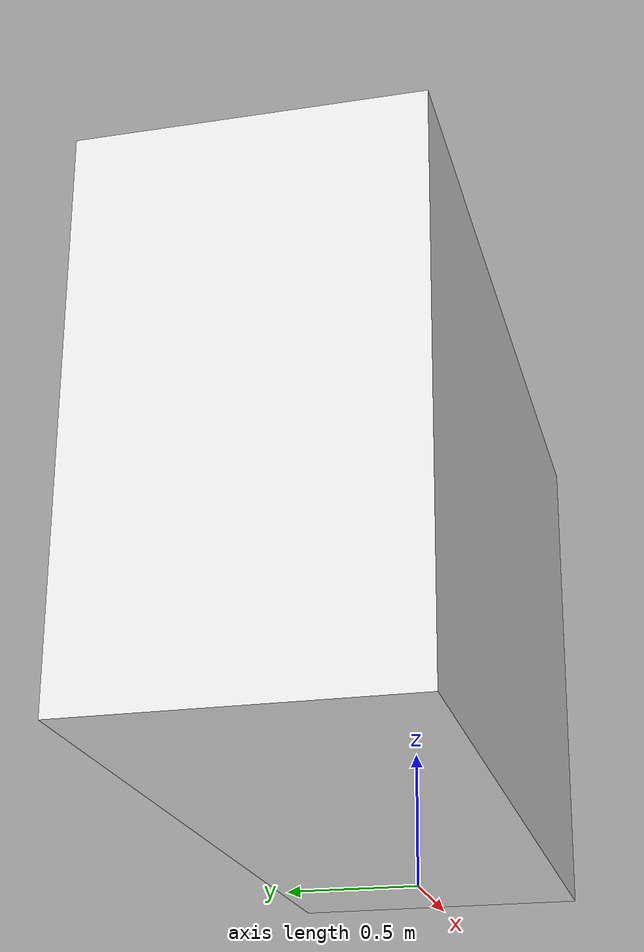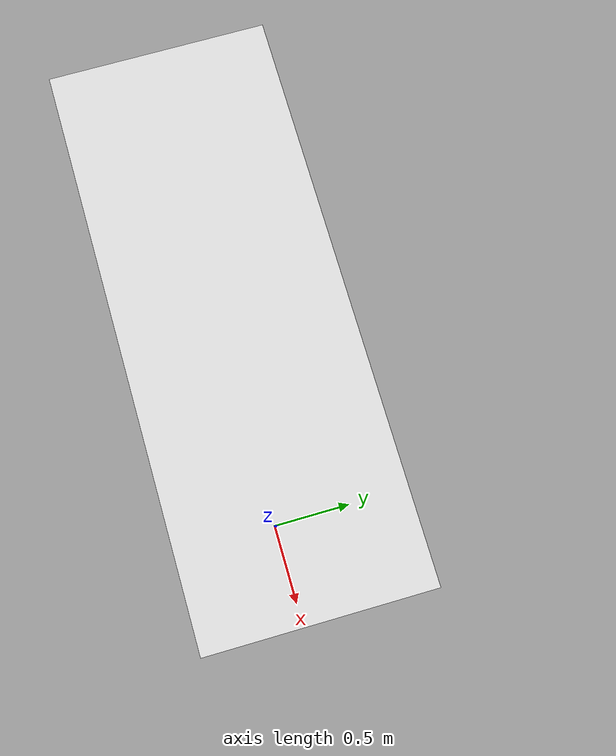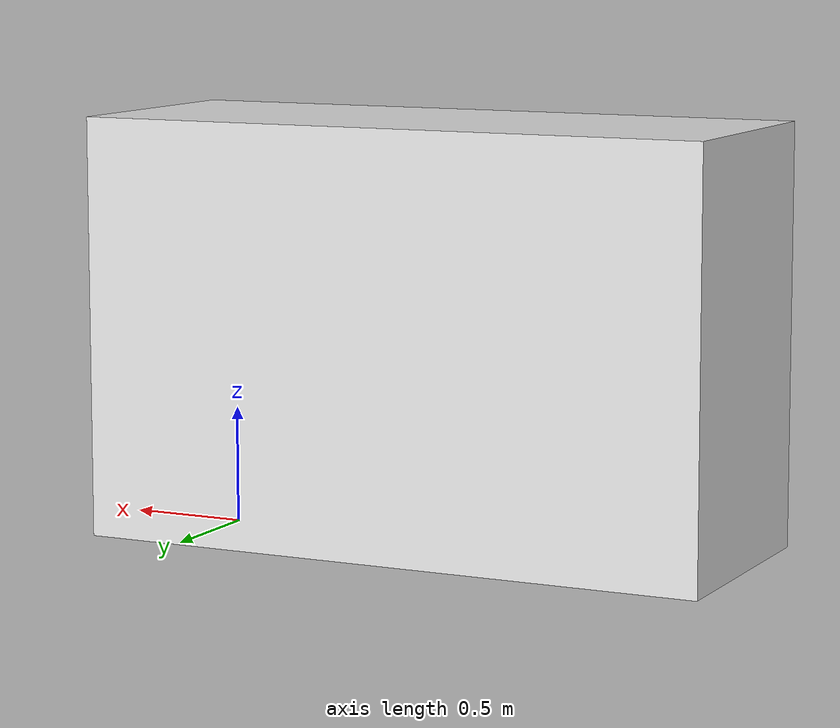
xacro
<?xml version="1.0"?>
<robot name="bee1" xmlns:xacro="http://ros.org/wiki/xacro">

  <!-- ============================ PARAMETRELER ============================ -->
  <!-- Arac govde olculeri (Genel Bilgilendirme dokumani, metre) -->
  <xacro:property name="body_length"   value="2.740"/>
  <xacro:property name="body_width"    value="1.060"/>
  <xacro:property name="body_height"   value="1.785"/>
  <xacro:property name="wheelbase"     value="1.860"/>   <!-- on aks <-> arka aks -->
  <xacro:property name="front_overhang" value="0.410"/>  <!-- on aks -> on burun -->
  <xacro:property name="rear_overhang"  value="0.470"/>  <!-- arka aks -> arka uc -->
  <xacro:property name="track_front"   value="0.886"/>
  <xacro:property name="track_rear"    value="0.850"/>

  <!-- Lastik 145/70 R13:  capi = 13*0.0254 + 2*0.145*0.70 = 0.5333 m -> yaricap 0.267 -->
  <xacro:property name="wheel_radius"  value="0.267"/>
  <xacro:property name="wheel_width"   value="0.145"/>

  <xacro:property name="body_center_x"
       value="${-(rear_overhang + wheelbase)/2 + (-front_overhang + 0)/2 + front_overhang}"/>
  <!-- daha okunakli hesap asagida visual icinde dogrudan verildi -->

  <!-- Sensor offsetleri (base_link = on aks, REP-103 +x ileri) -->
  <xacro:property name="lidar_x"  value="0.177"/>
  <xacro:property name="lidar_y"  value="0.0"/>
  <xacro:property name="lidar_z"  value="1.350"/>

  <xacro:property name="cam_x"    value="0.205"/>
  <xacro:property name="cam_y"    value="0.060"/>
  <xacro:property name="cam_z"    value="0.685"/>

  <xacro:property name="xsens_x"  value="-1.440"/>
  <xacro:property name="xsens_y"  value="0.0"/>
  <xacro:property name="xsens_z"  value="1.390"/>

  <!-- Renk malzemeleri (sadece RViz gorsel) -->
  <material name="body_white"><color rgba="0.9 0.9 0.9 1.0"/></material>
  <material name="wheel_black"><color rgba="0.1 0.1 0.1 1.0"/></material>
  <material name="lidar_red"><color rgba="0.85 0.1 0.1 1.0"/></material>
  <material name="cam_blue"><color rgba="0.1 0.3 0.85 1.0"/></material>
  <material name="imu_yellow"><color rgba="0.95 0.85 0.1 1.0"/></material>
  <material name="gnss_green"><color rgba="0.1 0.7 0.3 1.0"/></material>

  <!-- ============================ BASE LINK ============================ -->
  <!-- Yer hizasinda, on aks merkezinde, boyutsuz referans frame. -->
  <link name="base_link"/>

  <!-- Govde: base_link'e gore arkaya ve yukari kaydirilmis kutu.
       Govde merkezi x = front_overhang - body_length/2
                       = 0.410 - 1.370 = -0.960 (on aksin 0.96m arkasinda) -->
  <link name="chassis_link">
    <visual>
      <origin xyz="0 0 ${body_height/2}" rpy="0 0 0"/>
      <geometry>
        <box size="${body_length} ${body_width} ${body_height}"/>
      </geometry>
      <material name="body_white"/>
    </visual>
    <collision>
      <origin xyz="0 0 ${body_height/2}" rpy="0 0 0"/>
      <geometry>
        <box size="${body_length} ${body_width} ${body_height}"/>
      </geometry>
    </collision>
  </link>

  <joint name="base_to_chassis" type="fixed">
    <parent link="base_link"/>
    <child link="chassis_link"/>
    <origin xyz="${front_overhang - body_length/2} 0 0" rpy="0 0 0"/>
  </joint>

  <!-- ============================ TEKERLEKLER ============================ -->
  <!-- Tekerlek makrosu: silindir, dik (y ekseni etrafinda dondurulmus) -->
  <xacro:macro name="wheel" params="name x y">
    <link name="${name}">
      <visual>
        <origin xyz="0 0 0" rpy="${pi/2} 0 0"/>
        <geometry>
          <cylinder radius="${wheel_radius}" length="${wheel_width}"/>
        </geometry>
        <material name="wheel_black"/>
      </visual>
      <collision>
        <origin xyz="0 0 0" rpy="${pi/2} 0 0"/>
        <geometry>
          <cylinder radius="${wheel_radius}" length="${wheel_width}"/>
        </geometry>
      </collision>
    </link>
    <joint name="${name}_joint" type="fixed">
      <parent link="base_link"/>
      <child link="${name}"/>
      <origin xyz="${x} ${y} ${wheel_radius}" rpy="0 0 0"/>
    </joint>
  </xacro:macro>

  <!-- On tekerlekler: on akste (x=0), iz/2 saga-sola -->
  <xacro:wheel name="front_left_wheel"  x="0"            y="${ track_front/2}"/>
  <xacro:wheel name="front_right_wheel" x="0"            y="${-track_front/2}"/>
  <!-- Arka tekerlekler: arka akste (x=-wheelbase) -->
  <xacro:wheel name="rear_left_wheel"   x="${-wheelbase}" y="${ track_rear/2}"/>
  <xacro:wheel name="rear_right_wheel"  x="${-wheelbase}" y="${-track_rear/2}"/>

  <!-- ============================ SENSORLER ============================ -->
  <!-- LIDAR (Velodyne VLP-16) -->
  <link name="lidar_link">
    <visual>
      <origin xyz="0 0 0" rpy="0 0 0"/>
      <geometry><cylinder radius="0.052" length="0.072"/></geometry>
      <material name="lidar_red"/>
    </visual>
  </link>
  <joint name="base_to_lidar" type="fixed">
    <parent link="base_link"/>
    <child link="lidar_link"/>
    <origin xyz="${lidar_x} ${lidar_y} ${lidar_z}" rpy="0 0 0"/>
  </joint>

  <link name="velodyne"/>
  <joint name="lidar_to_velodyne" type="fixed">
    <parent link="lidar_link"/>
    <child link="velodyne"/>
    <origin xyz="0 0 0" rpy="0 0 0"/>
  </joint>

  <!-- Sol kamera (ZED2 sol) -->
  <link name="camera_left_link">
    <visual>
      <origin xyz="0 0 0" rpy="0 0 0"/>
      <geometry><box size="0.03 0.05 0.03"/></geometry>
      <material name="cam_blue"/>
    </visual>
  </link>
  <joint name="base_to_camera_left" type="fixed">
    <parent link="base_link"/>
    <child link="camera_left_link"/>
    <origin xyz="${cam_x} ${cam_y} ${cam_z}" rpy="0 0 0"/>
  </joint>

  <!-- Sag kamera (ZED2 sag) -->
  <link name="camera_right_link">
    <visual>
      <origin xyz="0 0 0" rpy="0 0 0"/>
      <geometry><box size="0.03 0.05 0.03"/></geometry>
      <material name="cam_blue"/>
    </visual>
  </link>
  <joint name="base_to_camera_right" type="fixed">
    <parent link="base_link"/>
    <child link="camera_right_link"/>
    <origin xyz="${cam_x} ${-cam_y} ${cam_z}" rpy="0 0 0"/>
  </joint>

  <!-- IMU (XSENS MTI-680) -->
  <link name="imu_link">
    <visual>
      <origin xyz="0 0 0" rpy="0 0 0"/>
      <geometry><box size="0.06 0.06 0.02"/></geometry>
      <material name="imu_yellow"/>
    </visual>
  </link>
  <joint name="base_to_imu" type="fixed">
    <parent link="base_link"/>
    <child link="imu_link"/>
    <origin xyz="${xsens_x} ${xsens_y} ${xsens_z}" rpy="0 0 0"/>
  </joint>

  <!-- GNSS (XSENS ayni govde, GPS anten) -->
  <link name="gnss_link">
    <visual>
      <origin xyz="0 0 0" rpy="0 0 0"/>
      <geometry><cylinder radius="0.03" length="0.02"/></geometry>
      <material name="gnss_green"/>
    </visual>
  </link>
  <joint name="base_to_gnss" type="fixed">
    <parent link="base_link"/>
    <child link="gnss_link"/>
    <origin xyz="${xsens_x} ${xsens_y} ${xsens_z}" rpy="0 0 0"/>
  </joint>

</robot>
